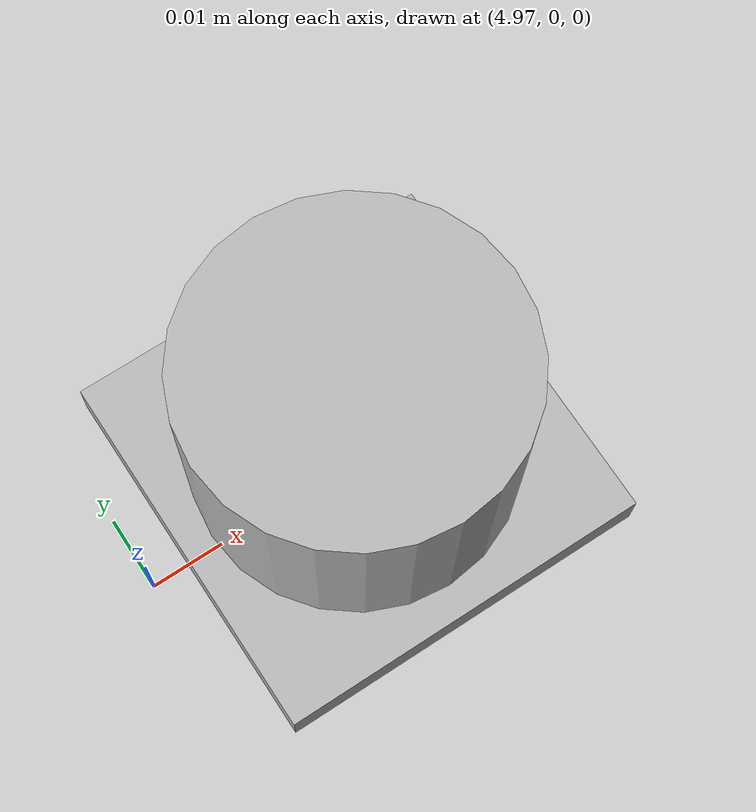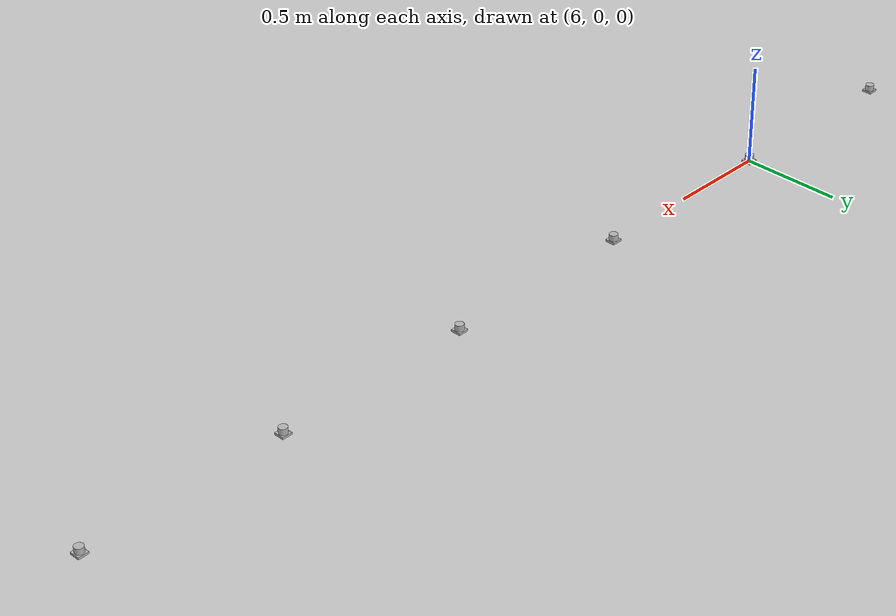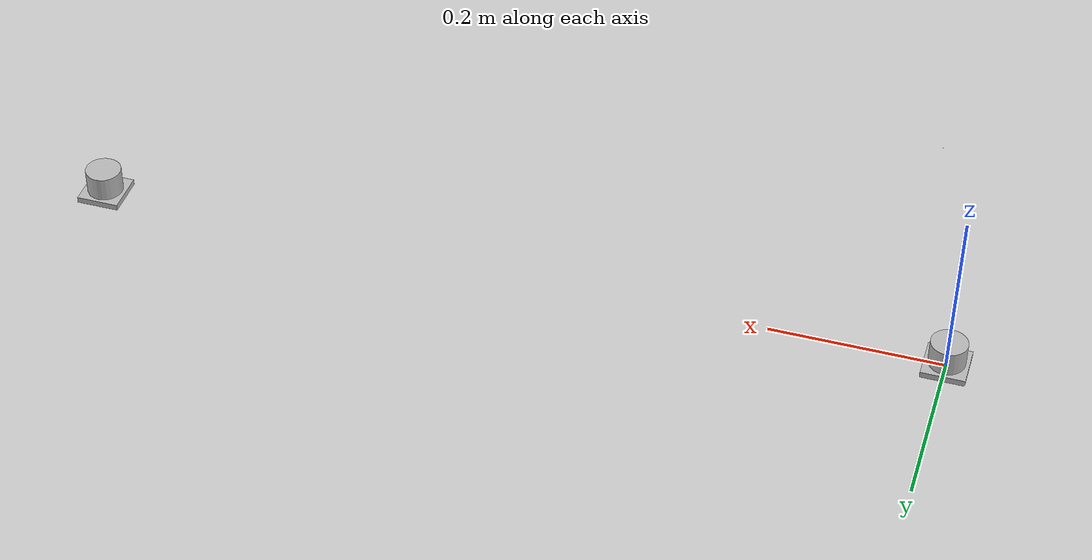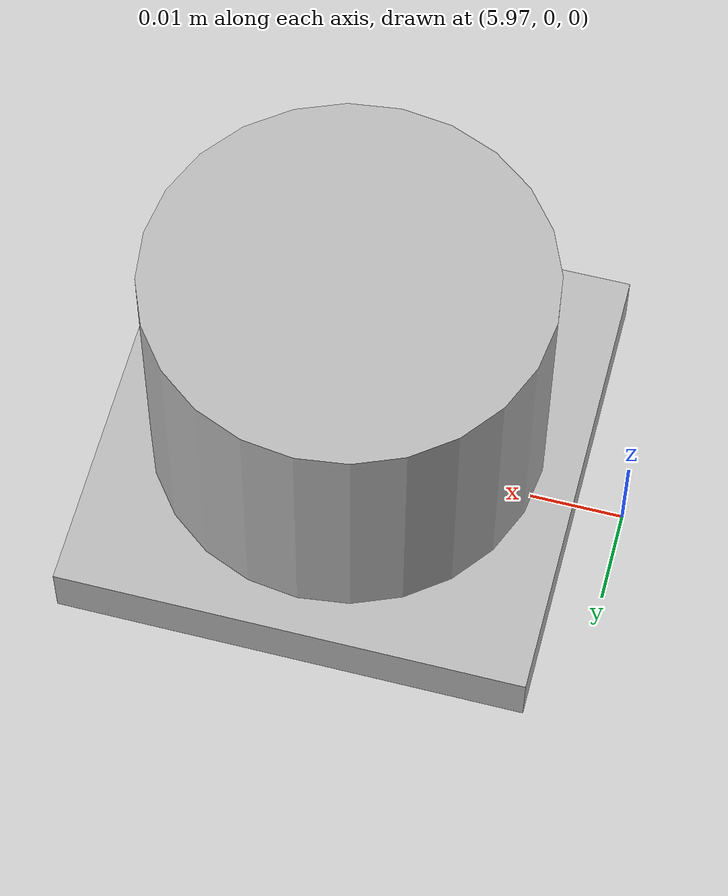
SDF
<sdf version='1.7'>
  <world name='default'>
    <light name='sun' type='directional'>
      <cast_shadows>1</cast_shadows>
      <pose>0 0 10 0 -0 0</pose>
      <diffuse>0.8 0.8 0.8 1</diffuse>
      <specular>0.1 0.1 0.1 1</specular>
      <attenuation>
        <range>1000</range>
        <constant>0.9</constant>
        <linear>0.01</linear>
        <quadratic>0.001</quadratic>
      </attenuation>
      <direction>-0.5 0.5 -1</direction>
    </light>
    <model name='ground_plane'>
      <static>1</static>
      <link name='link'>
        <collision name='collision'>
          <geometry>
            <plane>
              <normal>0 0 1</normal>
              <size>100 100</size>
            </plane>
          </geometry>
          <surface>
            <friction>
              <ode>
                <mu>100</mu>
                <mu2>50</mu2>
              </ode>
            </friction>
          </surface>
        </collision>
        <visual name='visual'>
          <cast_shadows>0</cast_shadows>
          <geometry>
            <plane>
              <normal>0 0 1</normal>
              <size>100 100</size>
            </plane>
          </geometry>
          <material>
            <script>
              <uri>file://media/materials/scripts/gazebo.material</uri>
              <name>Gazebo/Grey</name>
            </script>
          </material>
        </visual>
      </link>
    </model>
    <physics name='default_physics' default='0' type='ode'>
      <max_step_size>0.01</max_step_size>
      <real_time_factor>1</real_time_factor>
      <real_time_update_rate>100</real_time_update_rate>
    </physics>
    <plugin name='disable_physics' filename='libcustom_gazebo_disable_physics.so'/>
    <scene>
      <ambient>0.4 0.4 0.4 1</ambient>
      <background>0.7 0.7 0.7 1</background>
      <shadows>1</shadows>
    </scene>
    <gui fullscreen='0'>
      <camera name='user_camera'>
        <pose>-16 -27 18 0 0.5 1</pose>
        <view_controller>orbit</view_controller>
        <projection_type>perspective</projection_type>
      </camera>
    </gui>
    <model name='lidar0'>
      <pose>0 0 0 0 -0 0</pose>
      <link name='link'>
        <inertial>
          <mass>0.1</mass>
        </inertial>
        <visual name='visual-base'>
          <pose>0 0 -0.0145 0 -0 0</pose>
          <geometry>
            <box>
              <size>0.05 0.05 0.041</size>
            </box>
          </geometry>
        </visual>
        <visual name='visual-top'>
          <pose>0 0 0.0205 0 -0 0</pose>
          <geometry>
            <cylinder>
              <radius>0.021</radius>
              <length>0.029</length>
            </cylinder>
          </geometry>
        </visual>
        <collision name='collision-base'>
          <pose>0 0 -0.0145 0 -0 0</pose>
          <geometry>
            <box>
              <size>0.05 0.05 0.041</size>
            </box>
          </geometry>
        </collision>
        <collision name='collision-top'>
          <pose>0 0 0.0205 0 -0 0</pose>
          <geometry>
            <cylinder>
              <radius>0.021</radius>
              <length>0.029</length>
            </cylinder>
          </geometry>
        </collision>
        <sensor name='laser' type='gpu_ray'>
          <pose>0.01 0 0.0175 0 -0 0</pose>
          <ray>
            <scan>
              <horizontal>
                <samples>1072</samples>
                <resolution>1</resolution>
                <min_angle>-2.26889</min_angle>
                <max_angle>2.2689</max_angle>
              </horizontal>
            </scan>
            <range>
              <min>0.08</min>
              <max>10</max>
              <resolution>0.01</resolution>
            </range>
          </ray>
          <always_on>1</always_on>
          <update_rate>34</update_rate>
          <visualize>0</visualize>
        </sensor>
      </link>
    </model>
    <model name='lidar1'>
      <pose>1 0 0 0 -0 0</pose>
      <link name='link'>
        <inertial>
          <mass>0.1</mass>
        </inertial>
        <visual name='visual-base'>
          <pose>0 0 -0.0145 0 -0 0</pose>
          <geometry>
            <box>
              <size>0.05 0.05 0.041</size>
            </box>
          </geometry>
        </visual>
        <visual name='visual-top'>
          <pose>0 0 0.0205 0 -0 0</pose>
          <geometry>
            <cylinder>
              <radius>0.021</radius>
              <length>0.029</length>
            </cylinder>
          </geometry>
        </visual>
        <collision name='collision-base'>
          <pose>0 0 -0.0145 0 -0 0</pose>
          <geometry>
            <box>
              <size>0.05 0.05 0.041</size>
            </box>
          </geometry>
        </collision>
        <collision name='collision-top'>
          <pose>0 0 0.0205 0 -0 0</pose>
          <geometry>
            <cylinder>
              <radius>0.021</radius>
              <length>0.029</length>
            </cylinder>
          </geometry>
        </collision>
        <sensor name='laser' type='gpu_ray'>
          <pose>0.01 0 0.0175 0 -0 0</pose>
          <ray>
            <scan>
              <horizontal>
                <samples>1072</samples>
                <resolution>1</resolution>
                <min_angle>-2.26889</min_angle>
                <max_angle>2.2689</max_angle>
              </horizontal>
            </scan>
            <range>
              <min>0.08</min>
              <max>10</max>
              <resolution>0.01</resolution>
            </range>
          </ray>
          <always_on>1</always_on>
          <update_rate>34</update_rate>
          <visualize>0</visualize>
        </sensor>
      </link>
    </model>
    <model name='lidar2'>
      <pose>2 0 0 0 -0 0</pose>
      <link name='link'>
        <inertial>
          <mass>0.1</mass>
        </inertial>
        <visual name='visual-base'>
          <pose>0 0 -0.0145 0 -0 0</pose>
          <geometry>
            <box>
              <size>0.05 0.05 0.041</size>
            </box>
          </geometry>
        </visual>
        <visual name='visual-top'>
          <pose>0 0 0.0205 0 -0 0</pose>
          <geometry>
            <cylinder>
              <radius>0.021</radius>
              <length>0.029</length>
            </cylinder>
          </geometry>
        </visual>
        <collision name='collision-base'>
          <pose>0 0 -0.0145 0 -0 0</pose>
          <geometry>
            <box>
              <size>0.05 0.05 0.041</size>
            </box>
          </geometry>
        </collision>
        <collision name='collision-top'>
          <pose>0 0 0.0205 0 -0 0</pose>
          <geometry>
            <cylinder>
              <radius>0.021</radius>
              <length>0.029</length>
            </cylinder>
          </geometry>
        </collision>
        <sensor name='laser' type='gpu_ray'>
          <pose>0.01 0 0.0175 0 -0 0</pose>
          <ray>
            <scan>
              <horizontal>
                <samples>1072</samples>
                <resolution>1</resolution>
                <min_angle>-2.26889</min_angle>
                <max_angle>2.2689</max_angle>
              </horizontal>
            </scan>
            <range>
              <min>0.08</min>
              <max>10</max>
              <resolution>0.01</resolution>
            </range>
          </ray>
          <always_on>1</always_on>
          <update_rate>34</update_rate>
          <visualize>0</visualize>
        </sensor>
      </link>
    </model>
    <model name='lidar3'>
      <pose>3 0 0 0 -0 0</pose>
      <link name='link'>
        <inertial>
          <mass>0.1</mass>
        </inertial>
        <visual name='visual-base'>
          <pose>0 0 -0.0145 0 -0 0</pose>
          <geometry>
            <box>
              <size>0.05 0.05 0.041</size>
            </box>
          </geometry>
        </visual>
        <visual name='visual-top'>
          <pose>0 0 0.0205 0 -0 0</pose>
          <geometry>
            <cylinder>
              <radius>0.021</radius>
              <length>0.029</length>
            </cylinder>
          </geometry>
        </visual>
        <collision name='collision-base'>
          <pose>0 0 -0.0145 0 -0 0</pose>
          <geometry>
            <box>
              <size>0.05 0.05 0.041</size>
            </box>
          </geometry>
        </collision>
        <collision name='collision-top'>
          <pose>0 0 0.0205 0 -0 0</pose>
          <geometry>
            <cylinder>
              <radius>0.021</radius>
              <length>0.029</length>
            </cylinder>
          </geometry>
        </collision>
        <sensor name='laser' type='gpu_ray'>
          <pose>0.01 0 0.0175 0 -0 0</pose>
          <ray>
            <scan>
              <horizontal>
                <samples>1072</samples>
                <resolution>1</resolution>
                <min_angle>-2.26889</min_angle>
                <max_angle>2.2689</max_angle>
              </horizontal>
            </scan>
            <range>
              <min>0.08</min>
              <max>10</max>
              <resolution>0.01</resolution>
            </range>
          </ray>
          <always_on>1</always_on>
          <update_rate>34</update_rate>
          <visualize>0</visualize>
        </sensor>
      </link>
    </model>
    <model name='lidar4'>
      <pose>4 0 0 0 -0 0</pose>
      <link name='link'>
        <inertial>
          <mass>0.1</mass>
        </inertial>
        <visual name='visual-base'>
          <pose>0 0 -0.0145 0 -0 0</pose>
          <geometry>
            <box>
              <size>0.05 0.05 0.041</size>
            </box>
          </geometry>
        </visual>
        <visual name='visual-top'>
          <pose>0 0 0.0205 0 -0 0</pose>
          <geometry>
            <cylinder>
              <radius>0.021</radius>
              <length>0.029</length>
            </cylinder>
          </geometry>
        </visual>
        <collision name='collision-base'>
          <pose>0 0 -0.0145 0 -0 0</pose>
          <geometry>
            <box>
              <size>0.05 0.05 0.041</size>
            </box>
          </geometry>
        </collision>
        <collision name='collision-top'>
          <pose>0 0 0.0205 0 -0 0</pose>
          <geometry>
            <cylinder>
              <radius>0.021</radius>
              <length>0.029</length>
            </cylinder>
          </geometry>
        </collision>
        <sensor name='laser' type='gpu_ray'>
          <pose>0.01 0 0.0175 0 -0 0</pose>
          <ray>
            <scan>
              <horizontal>
                <samples>1072</samples>
                <resolution>1</resolution>
                <min_angle>-2.26889</min_angle>
                <max_angle>2.2689</max_angle>
              </horizontal>
            </scan>
            <range>
              <min>0.08</min>
              <max>10</max>
              <resolution>0.01</resolution>
            </range>
          </ray>
          <always_on>1</always_on>
          <update_rate>34</update_rate>
          <visualize>0</visualize>
        </sensor>
      </link>
    </model>
    <model name='lidar5'>
      <pose>5 0 0 0 -0 0</pose>
      <link name='link'>
        <inertial>
          <mass>0.1</mass>
        </inertial>
        <visual name='visual-base'>
          <pose>0 0 -0.0145 0 -0 0</pose>
          <geometry>
            <box>
              <size>0.05 0.05 0.041</size>
            </box>
          </geometry>
        </visual>
        <visual name='visual-top'>
          <pose>0 0 0.0205 0 -0 0</pose>
          <geometry>
            <cylinder>
              <radius>0.021</radius>
              <length>0.029</length>
            </cylinder>
          </geometry>
        </visual>
        <collision name='collision-base'>
          <pose>0 0 -0.0145 0 -0 0</pose>
          <geometry>
            <box>
              <size>0.05 0.05 0.041</size>
            </box>
          </geometry>
        </collision>
        <collision name='collision-top'>
          <pose>0 0 0.0205 0 -0 0</pose>
          <geometry>
            <cylinder>
              <radius>0.021</radius>
              <length>0.029</length>
            </cylinder>
          </geometry>
        </collision>
        <sensor name='laser' type='gpu_ray'>
          <pose>0.01 0 0.0175 0 -0 0</pose>
          <ray>
            <scan>
              <horizontal>
                <samples>1072</samples>
                <resolution>1</resolution>
                <min_angle>-2.26889</min_angle>
                <max_angle>2.2689</max_angle>
              </horizontal>
            </scan>
            <range>
              <min>0.08</min>
              <max>10</max>
              <resolution>0.01</resolution>
            </range>
          </ray>
          <always_on>1</always_on>
          <update_rate>34</update_rate>
          <visualize>0</visualize>
        </sensor>
      </link>
    </model>
    <model name='lidar6'>
      <pose>6 0 0 0 -0 0</pose>
      <link name='link'>
        <inertial>
          <mass>0.1</mass>
        </inertial>
        <visual name='visual-base'>
          <pose>0 0 -0.0145 0 -0 0</pose>
          <geometry>
            <box>
              <size>0.05 0.05 0.041</size>
            </box>
          </geometry>
        </visual>
        <visual name='visual-top'>
          <pose>0 0 0.0205 0 -0 0</pose>
          <geometry>
            <cylinder>
              <radius>0.021</radius>
              <length>0.029</length>
            </cylinder>
          </geometry>
        </visual>
        <collision name='collision-base'>
          <pose>0 0 -0.0145 0 -0 0</pose>
          <geometry>
            <box>
              <size>0.05 0.05 0.041</size>
            </box>
          </geometry>
        </collision>
        <collision name='collision-top'>
          <pose>0 0 0.0205 0 -0 0</pose>
          <geometry>
            <cylinder>
              <radius>0.021</radius>
              <length>0.029</length>
            </cylinder>
          </geometry>
        </collision>
        <sensor name='laser' type='gpu_ray'>
          <pose>0.01 0 0.0175 0 -0 0</pose>
          <ray>
            <scan>
              <horizontal>
                <samples>1072</samples>
                <resolution>1</resolution>
                <min_angle>-2.26889</min_angle>
                <max_angle>2.2689</max_angle>
              </horizontal>
            </scan>
            <range>
              <min>0.08</min>
              <max>10</max>
              <resolution>0.01</resolution>
            </range>
          </ray>
          <always_on>1</always_on>
          <update_rate>34</update_rate>
          <visualize>0</visualize>
        </sensor>
      </link>
    </model>
    <model name='lidar7'>
      <pose>7 0 0 0 -0 0</pose>
      <link name='link'>
        <inertial>
          <mass>0.1</mass>
        </inertial>
        <visual name='visual-base'>
          <pose>0 0 -0.0145 0 -0 0</pose>
          <geometry>
            <box>
              <size>0.05 0.05 0.041</size>
            </box>
          </geometry>
        </visual>
        <visual name='visual-top'>
          <pose>0 0 0.0205 0 -0 0</pose>
          <geometry>
            <cylinder>
              <radius>0.021</radius>
              <length>0.029</length>
            </cylinder>
          </geometry>
        </visual>
        <collision name='collision-base'>
          <pose>0 0 -0.0145 0 -0 0</pose>
          <geometry>
            <box>
              <size>0.05 0.05 0.041</size>
            </box>
          </geometry>
        </collision>
        <collision name='collision-top'>
          <pose>0 0 0.0205 0 -0 0</pose>
          <geometry>
            <cylinder>
              <radius>0.021</radius>
              <length>0.029</length>
            </cylinder>
          </geometry>
        </collision>
        <sensor name='laser' type='gpu_ray'>
          <pose>0.01 0 0.0175 0 -0 0</pose>
          <ray>
            <scan>
              <horizontal>
                <samples>1072</samples>
                <resolution>1</resolution>
                <min_angle>-2.26889</min_angle>
                <max_angle>2.2689</max_angle>
              </horizontal>
            </scan>
            <range>
              <min>0.08</min>
              <max>10</max>
              <resolution>0.01</resolution>
            </range>
          </ray>
          <always_on>1</always_on>
          <update_rate>34</update_rate>
          <visualize>0</visualize>
        </sensor>
      </link>
    </model>
    <model name='lidar8'>
      <pose>8 0 0 0 -0 0</pose>
      <link name='link'>
        <inertial>
          <mass>0.1</mass>
        </inertial>
        <visual name='visual-base'>
          <pose>0 0 -0.0145 0 -0 0</pose>
          <geometry>
            <box>
              <size>0.05 0.05 0.041</size>
            </box>
          </geometry>
        </visual>
        <visual name='visual-top'>
          <pose>0 0 0.0205 0 -0 0</pose>
          <geometry>
            <cylinder>
              <radius>0.021</radius>
              <length>0.029</length>
            </cylinder>
          </geometry>
        </visual>
        <collision name='collision-base'>
          <pose>0 0 -0.0145 0 -0 0</pose>
          <geometry>
            <box>
              <size>0.05 0.05 0.041</size>
            </box>
          </geometry>
        </collision>
        <collision name='collision-top'>
          <pose>0 0 0.0205 0 -0 0</pose>
          <geometry>
            <cylinder>
              <radius>0.021</radius>
              <length>0.029</length>
            </cylinder>
          </geometry>
        </collision>
        <sensor name='laser' type='gpu_ray'>
          <pose>0.01 0 0.0175 0 -0 0</pose>
          <ray>
            <scan>
              <horizontal>
                <samples>1072</samples>
                <resolution>1</resolution>
                <min_angle>-2.26889</min_angle>
                <max_angle>2.2689</max_angle>
              </horizontal>
            </scan>
            <range>
              <min>0.08</min>
              <max>10</max>
              <resolution>0.01</resolution>
            </range>
          </ray>
          <always_on>1</always_on>
          <update_rate>34</update_rate>
          <visualize>0</visualize>
        </sensor>
      </link>
    </model>
    <model name='lidar9'>
      <pose>9 0 0 0 -0 0</pose>
      <link name='link'>
        <inertial>
          <mass>0.1</mass>
        </inertial>
        <visual name='visual-base'>
          <pose>0 0 -0.0145 0 -0 0</pose>
          <geometry>
            <box>
              <size>0.05 0.05 0.041</size>
            </box>
          </geometry>
        </visual>
        <visual name='visual-top'>
          <pose>0 0 0.0205 0 -0 0</pose>
          <geometry>
            <cylinder>
              <radius>0.021</radius>
              <length>0.029</length>
            </cylinder>
          </geometry>
        </visual>
        <collision name='collision-base'>
          <pose>0 0 -0.0145 0 -0 0</pose>
          <geometry>
            <box>
              <size>0.05 0.05 0.041</size>
            </box>
          </geometry>
        </collision>
        <collision name='collision-top'>
          <pose>0 0 0.0205 0 -0 0</pose>
          <geometry>
            <cylinder>
              <radius>0.021</radius>
              <length>0.029</length>
            </cylinder>
          </geometry>
        </collision>
        <sensor name='laser' type='gpu_ray'>
          <pose>0.01 0 0.0175 0 -0 0</pose>
          <ray>
            <scan>
              <horizontal>
                <samples>1072</samples>
                <resolution>1</resolution>
                <min_angle>-2.26889</min_angle>
                <max_angle>2.2689</max_angle>
              </horizontal>
            </scan>
            <range>
              <min>0.08</min>
              <max>10</max>
              <resolution>0.01</resolution>
            </range>
          </ray>
          <always_on>1</always_on>
          <update_rate>34</update_rate>
          <visualize>0</visualize>
        </sensor>
      </link>
    </model>
    <model name='lidar10'>
      <pose>10 0 0 0 -0 0</pose>
      <link name='link'>
        <inertial>
          <mass>0.1</mass>
        </inertial>
        <visual name='visual-base'>
          <pose>0 0 -0.0145 0 -0 0</pose>
          <geometry>
            <box>
              <size>0.05 0.05 0.041</size>
            </box>
          </geometry>
        </visual>
        <visual name='visual-top'>
          <pose>0 0 0.0205 0 -0 0</pose>
          <geometry>
            <cylinder>
              <radius>0.021</radius>
              <length>0.029</length>
            </cylinder>
          </geometry>
        </visual>
        <collision name='collision-base'>
          <pose>0 0 -0.0145 0 -0 0</pose>
          <geometry>
            <box>
              <size>0.05 0.05 0.041</size>
            </box>
          </geometry>
        </collision>
        <collision name='collision-top'>
          <pose>0 0 0.0205 0 -0 0</pose>
          <geometry>
            <cylinder>
              <radius>0.021</radius>
              <length>0.029</length>
            </cylinder>
          </geometry>
        </collision>
        <sensor name='laser' type='gpu_ray'>
          <pose>0.01 0 0.0175 0 -0 0</pose>
          <ray>
            <scan>
              <horizontal>
                <samples>1072</samples>
                <resolution>1</resolution>
                <min_angle>-2.26889</min_angle>
                <max_angle>2.2689</max_angle>
              </horizontal>
            </scan>
            <range>
              <min>0.08</min>
              <max>10</max>
              <resolution>0.01</resolution>
            </range>
          </ray>
          <always_on>1</always_on>
          <update_rate>34</update_rate>
          <visualize>0</visualize>
        </sensor>
      </link>
    </model>
    <model name='lidar11'>
      <pose>11 0 0 0 -0 0</pose>
      <link name='link'>
        <inertial>
          <mass>0.1</mass>
        </inertial>
        <visual name='visual-base'>
          <pose>0 0 -0.0145 0 -0 0</pose>
          <geometry>
            <box>
              <size>0.05 0.05 0.041</size>
            </box>
          </geometry>
        </visual>
        <visual name='visual-top'>
          <pose>0 0 0.0205 0 -0 0</pose>
          <geometry>
            <cylinder>
              <radius>0.021</radius>
              <length>0.029</length>
            </cylinder>
          </geometry>
        </visual>
        <collision name='collision-base'>
          <pose>0 0 -0.0145 0 -0 0</pose>
          <geometry>
            <box>
              <size>0.05 0.05 0.041</size>
            </box>
          </geometry>
        </collision>
        <collision name='collision-top'>
          <pose>0 0 0.0205 0 -0 0</pose>
          <geometry>
            <cylinder>
              <radius>0.021</radius>
              <length>0.029</length>
            </cylinder>
          </geometry>
        </collision>
        <sensor name='laser' type='gpu_ray'>
          <pose>0.01 0 0.0175 0 -0 0</pose>
          <ray>
            <scan>
              <horizontal>
                <samples>1072</samples>
                <resolution>1</resolution>
                <min_angle>-2.26889</min_angle>
                <max_angle>2.2689</max_angle>
              </horizontal>
            </scan>
            <range>
              <min>0.08</min>
              <max>10</max>
              <resolution>0.01</resolution>
            </range>
          </ray>
          <always_on>1</always_on>
          <update_rate>34</update_rate>
          <visualize>0</visualize>
        </sensor>
      </link>
    </model>
    <model name='lidar12'>
      <pose>12 0 0 0 -0 0</pose>
      <link name='link'>
        <inertial>
          <mass>0.1</mass>
        </inertial>
        <visual name='visual-base'>
          <pose>0 0 -0.0145 0 -0 0</pose>
          <geometry>
            <box>
              <size>0.05 0.05 0.041</size>
            </box>
          </geometry>
        </visual>
        <visual name='visual-top'>
          <pose>0 0 0.0205 0 -0 0</pose>
          <geometry>
            <cylinder>
              <radius>0.021</radius>
              <length>0.029</length>
            </cylinder>
          </geometry>
        </visual>
        <collision name='collision-base'>
          <pose>0 0 -0.0145 0 -0 0</pose>
          <geometry>
            <box>
              <size>0.05 0.05 0.041</size>
            </box>
          </geometry>
        </collision>
        <collision name='collision-top'>
          <pose>0 0 0.0205 0 -0 0</pose>
          <geometry>
            <cylinder>
              <radius>0.021</radius>
              <length>0.029</length>
            </cylinder>
          </geometry>
        </collision>
        <sensor name='laser' type='gpu_ray'>
          <pose>0.01 0 0.0175 0 -0 0</pose>
          <ray>
            <scan>
              <horizontal>
                <samples>1072</samples>
                <resolution>1</resolution>
                <min_angle>-2.26889</min_angle>
                <max_angle>2.2689</max_angle>
              </horizontal>
            </scan>
            <range>
              <min>0.08</min>
              <max>10</max>
              <resolution>0.01</resolution>
            </range>
          </ray>
          <always_on>1</always_on>
          <update_rate>34</update_rate>
          <visualize>0</visualize>
        </sensor>
      </link>
    </model>
    <gravity>0 0 -9.8</gravity>
    <magnetic_field>6e-06 2.3e-05 -4.2e-05</magnetic_field>
    <atmosphere type='adiabatic'/>
  </world>
</sdf>
